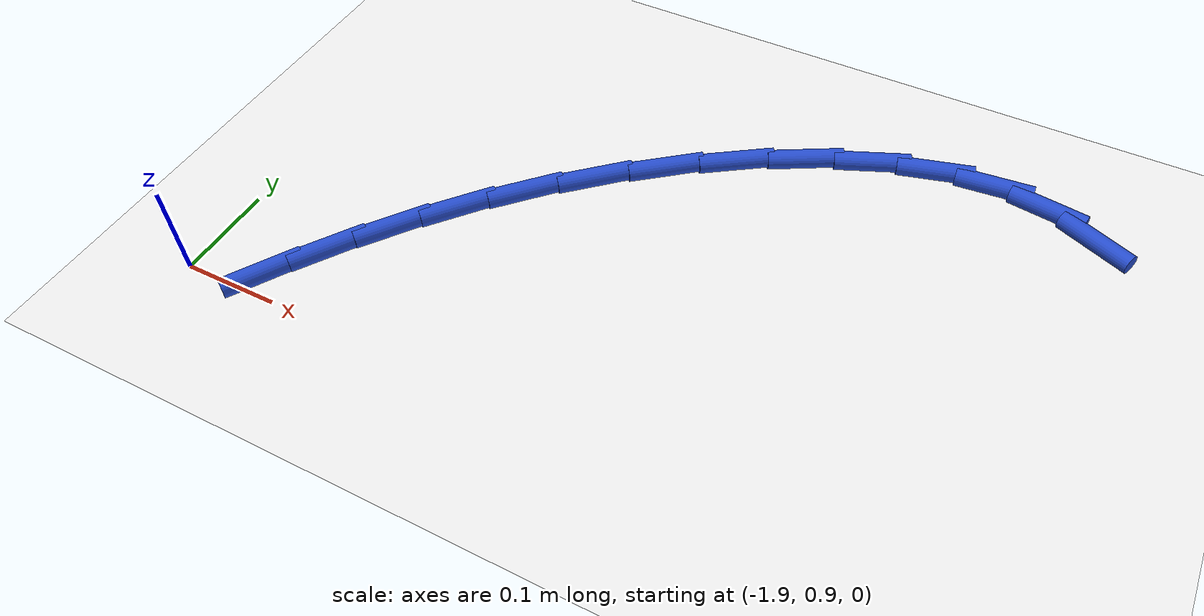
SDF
<sdf version="1.6">
 <world name="default">
  <model name="ground_plane">
   <static>1</static>
   <link name="link">
    <collision name="collision">
     <geometry><plane><normal>0 0 1</normal><size>100 100</size></plane></geometry>
     <surface><friction><ode><mu>100</mu><mu2>50</mu2></ode></friction></surface>
    </collision>
    <visual name="visual">
     <cast_shadows>0</cast_shadows>
     <geometry><plane><normal>0 0 1</normal><size>100 100</size></plane></geometry>
     <material>
      <script><uri>file://media/materials/scripts/gazebo.material</uri><name>Gazebo/WhiteGlow</name></script>
     </material>
    </visual>
   </link>
  </model>
  <model name="line">
   <link name="link_27">
    <pose>-1.1185490341579578 1.3165118790643233 0.01 0 1.57 -0.39831800738578726</pose>
    <collision name="collision">
     <geometry><cylinder><radius>0.01</radius><length>0.08</length></cylinder></geometry>
    </collision>
    <visual name="visual">
     <material>
      <script><name>Gazebo/Blue</name><uri>file://media/materials/scripts/gazebo.material</uri></script>
     </material>
     <geometry><cylinder><radius>0.01</radius><length>0.08</length></cylinder></geometry>
    </visual>
   </link>
   <link name="link_28">
    <pose>-1.171409443996224 1.3387561722689334 0.01 0 1.57 -0.13804664206275297</pose>
    <collision name="collision">
     <geometry><cylinder><radius>0.01</radius><length>0.08</length></cylinder></geometry>
    </collision>
    <visual name="visual">
     <material>
      <script><name>Gazebo/Blue</name><uri>file://media/materials/scripts/gazebo.material</uri></script>
     </material>
     <geometry><cylinder><radius>0.01</radius><length>0.08</length></cylinder></geometry>
    </visual>
   </link>
   <link name="link_29">
    <pose>-1.228777483057617 1.3467263306333754 0.01 0 1.57 0.08865558599005346</pose>
    <collision name="collision">
     <geometry><cylinder><radius>0.01</radius><length>0.08</length></cylinder></geometry>
    </collision>
    <visual name="visual">
     <material>
      <script><name>Gazebo/Blue</name><uri>file://media/materials/scripts/gazebo.material</uri></script>
     </material>
     <geometry><cylinder><radius>0.01</radius><length>0.08</length></cylinder></geometry>
    </visual>
   </link>
   <link name="link_30">
    <pose>-1.289785726088682 1.3413033938908645 0.01 0 1.57 0.2631402315986309</pose>
    <collision name="collision">
     <geometry><cylinder><radius>0.01</radius><length>0.08</length></cylinder></geometry>
    </collision>
    <visual name="visual">
     <material>
      <script><name>Gazebo/Blue</name><uri>file://media/materials/scripts/gazebo.material</uri></script>
     </material>
     <geometry><cylinder><radius>0.01</radius><length>0.08</length></cylinder></geometry>
    </visual>
   </link>
   <link name="link_31">
    <pose>-1.3530751184908145 1.3242540656145638 0.01 0 1.57 0.3968338880856187</pose>
    <collision name="collision">
     <geometry><cylinder><radius>0.01</radius><length>0.08</length></cylinder></geometry>
    </collision>
    <visual name="visual">
     <material>
      <script><name>Gazebo/Blue</name><uri>file://media/materials/scripts/gazebo.material</uri></script>
     </material>
     <geometry><cylinder><radius>0.01</radius><length>0.08</length></cylinder></geometry>
    </visual>
   </link>
   <link name="link_32">
    <pose>-1.4172864921440822 1.2973452538848214 0.01 0 1.57 0.5019469067569725</pose>
    <collision name="collision">
     <geometry><cylinder><radius>0.01</radius><length>0.08</length></cylinder></geometry>
    </collision>
    <visual name="visual">
     <material>
      <script><name>Gazebo/Blue</name><uri>file://media/materials/scripts/gazebo.material</uri></script>
     </material>
     <geometry><cylinder><radius>0.01</radius><length>0.08</length></cylinder></geometry>
    </visual>
   </link>
   <link name="link_33">
    <pose>-1.4810606789285528 1.262343866781986 0.01 0 1.57 0.5880975431307262</pose>
    <collision name="collision">
     <geometry><cylinder><radius>0.01</radius><length>0.08</length></cylinder></geometry>
    </collision>
    <visual name="visual">
     <material>
      <script><name>Gazebo/Blue</name><uri>file://media/materials/scripts/gazebo.material</uri></script>
     </material>
     <geometry><cylinder><radius>0.01</radius><length>0.08</length></cylinder></geometry>
    </visual>
   </link>
   <link name="link_34">
    <pose>-1.5430385107242932 1.221016812386406 0.01 0 1.57 0.6624729345770617</pose>
    <collision name="collision">
     <geometry><cylinder><radius>0.01</radius><length>0.08</length></cylinder></geometry>
    </collision>
    <visual name="visual">
     <material>
      <script><name>Gazebo/Blue</name><uri>file://media/materials/scripts/gazebo.material</uri></script>
     </material>
     <geometry><cylinder><radius>0.01</radius><length>0.08</length></cylinder></geometry>
    </visual>
   </link>
   <link name="link_35">
    <pose>-1.6018608194113715 1.1751309987784304 0.01 0 1.57 0.7307849780365002</pose>
    <collision name="collision">
     <geometry><cylinder><radius>0.01</radius><length>0.08</length></cylinder></geometry>
    </collision>
    <visual name="visual">
     <material>
      <script><name>Gazebo/Blue</name><uri>file://media/materials/scripts/gazebo.material</uri></script>
     </material>
     <geometry><cylinder><radius>0.01</radius><length>0.08</length></cylinder></geometry>
    </visual>
   </link>
   <link name="link_36">
    <pose>-1.6561684368698553 1.1264533340384077 0.01 0 1.57 0.7976056048501812</pose>
    <collision name="collision">
     <geometry><cylinder><radius>0.01</radius><length>0.08</length></cylinder></geometry>
    </collision>
    <visual name="visual">
     <material>
      <script><name>Gazebo/Blue</name><uri>file://media/materials/scripts/gazebo.material</uri></script>
     </material>
     <geometry><cylinder><radius>0.01</radius><length>0.08</length></cylinder></geometry>
    </visual>
   </link>
   <link name="link_37">
    <pose>-1.704918297797362 1.0764984812397693 0.01 0 1.57 0.8618568693593436</pose>
    <collision name="collision">
     <geometry><cylinder><radius>0.01</radius><length>0.08</length></cylinder></geometry>
    </collision>
    <visual name="visual">
     <material>
      <script><name>Gazebo/Blue</name><uri>file://media/materials/scripts/gazebo.material</uri></script>
     </material>
     <geometry><cylinder><radius>0.01</radius><length>0.08</length></cylinder></geometry>
    </visual>
   </link>
   <link name="link_38">
    <pose>-1.748629140087925 1.0255348094142296 0.01 0 1.57 0.9198933542592624</pose>
    <collision name="collision">
     <geometry><cylinder><radius>0.01</radius><length>0.08</length></cylinder></geometry>
    </collision>
    <visual name="visual">
     <material>
      <script><name>Gazebo/Blue</name><uri>file://media/materials/scripts/gazebo.material</uri></script>
     </material>
     <geometry><cylinder><radius>0.01</radius><length>0.08</length></cylinder></geometry>
    </visual>
   </link>
   <link name="link_39">
    <pose>-1.788301199443472 0.9734464600221555 0.01 0 1.57 0.9688915235956912</pose>
    <collision name="collision">
     <geometry><cylinder><radius>0.01</radius><length>0.08</length></cylinder></geometry>
    </collision>
    <visual name="visual">
     <material>
      <script><name>Gazebo/Blue</name><uri>file://media/materials/scripts/gazebo.material</uri></script>
     </material>
     <geometry><cylinder><radius>0.01</radius><length>0.08</length></cylinder></geometry>
    </visual>
   </link>
   <link name="link_40">
    <pose>-1.824934847680257 0.9201174659068553 0.01 0 1.57 1.006730981810277</pose>
    <collision name="collision">
     <geometry><cylinder><radius>0.01</radius><length>0.08</length></cylinder></geometry>
    </collision>
    <visual name="visual">
     <material>
      <script><name>Gazebo/Blue</name><uri>file://media/materials/scripts/gazebo.material</uri></script>
     </material>
     <geometry><cylinder><radius>0.01</radius><length>0.08</length></cylinder></geometry>
    </visual>
   </link>
  </model>
 </world>
</sdf>
